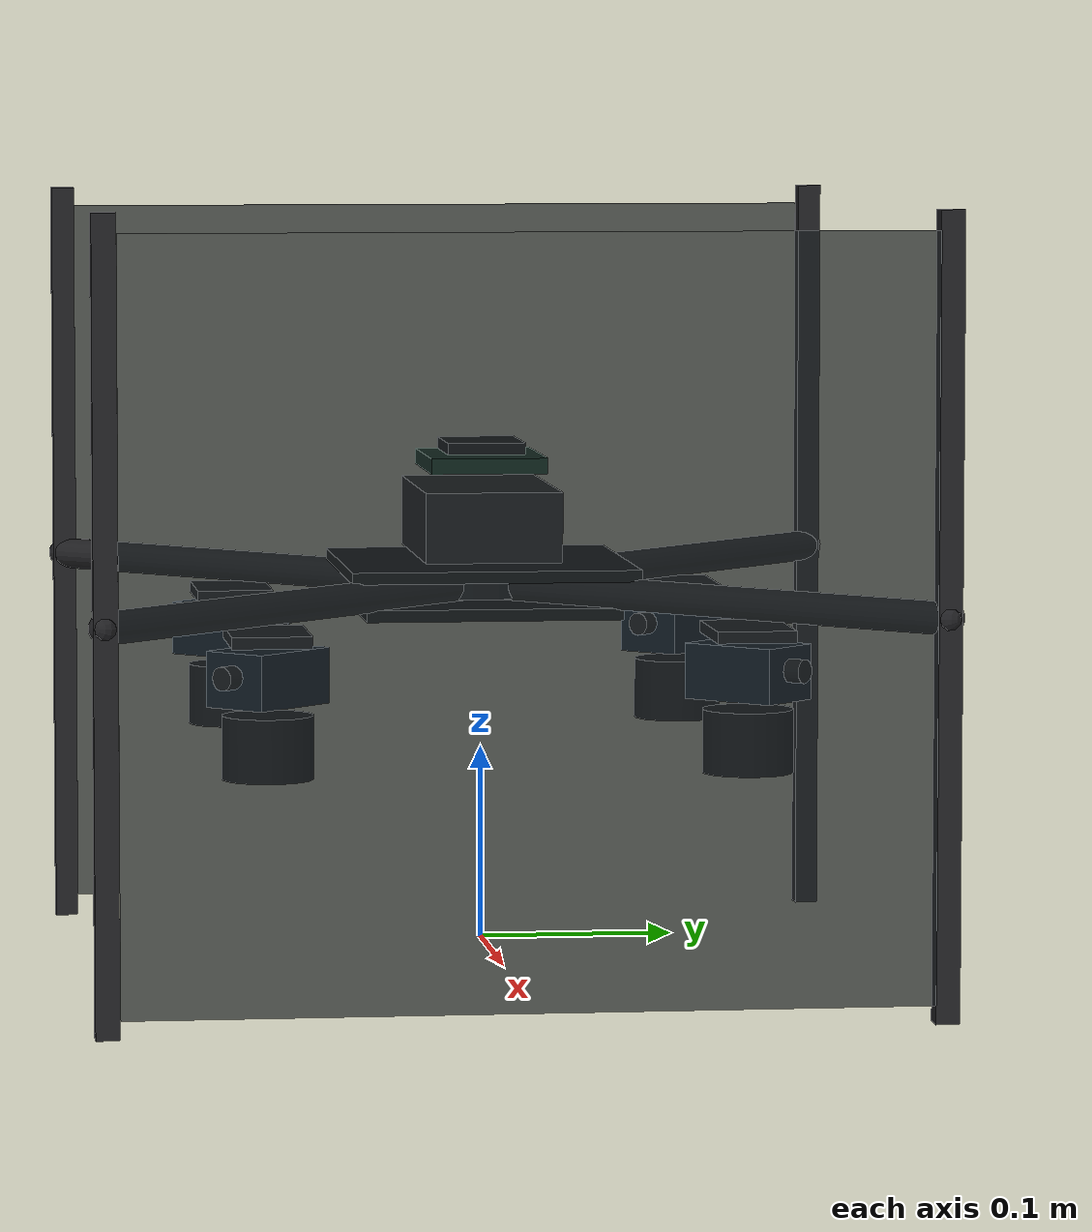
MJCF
<mujoco model="Follower">
  <compiler angle="radian" coordinate="local" inertiafromgeom="auto" />
  <option gravity="0 0 -9.81" timestep="0.002" />
  <default>
    <geom friction="1.0 1.0 1.0" density="0" />
    <joint damping="0.1" stiffness="0" />
  </default>

  <asset>
    <!-- Lightweight visual materials: all added decorative geoms are visual-only. -->
    <material name="mat_carbon" rgba="0.025 0.028 0.032 1" specular="0.45" shininess="0.75" />
    <material name="mat_dark_metal" rgba="0.08 0.085 0.095 1" specular="0.65" shininess="0.85" />
    <material name="mat_tube" rgba="0.12 0.12 0.13 1" specular="0.35" shininess="0.55" />
    <material name="mat_motor" rgba="0.04 0.045 0.055 1" specular="0.85" shininess="0.9" />
    <material name="mat_servo" rgba="0.02 0.10 0.18 1" specular="0.45" shininess="0.55" />
    <material name="mat_prop" rgba="1.0 0.55 0.08 0.82" specular="0.35" shininess="0.5" />
    <material name="mat_prop_disc" rgba="1.0 0.55 0.05 0.18" specular="0.2" shininess="0.25" />
    <material name="mat_contact" rgba="0.10 0.12 0.13 0.70" specular="0.25" shininess="0.45" />
    <material name="mat_contact_edge" rgba="0.02 0.02 0.025 1" specular="0.35" shininess="0.55" />
    <material name="mat_battery" rgba="0.12 0.12 0.12 1" specular="0.25" shininess="0.3" />
    <material name="mat_fc" rgba="0.02 0.25 0.12 1" specular="0.25" shininess="0.45" />
  </asset>
  <worldbody>

    <!-- Viewer helpers: lights and cameras do not affect dynamics. -->
    <light name="key_light" pos="1.0 -1.0 1.6" dir="-1 1 -2" diffuse="0.425 0.425 0.425" specular="0.125 0.125 0.125" />
    <light name="fill_light" pos="-0.8 0.8 1.2" dir="1 -1 -1.5" diffuse="0.125 0.125 0.15" specular="0.025 0.025 0.025" />
    <camera name="iso_view" pos="0.75 -0.75 0.55" xyaxes="0.707 0.707 0 -0.32 0.32 0.89" />
    <camera name="front_plate_view" pos="0.75 0.00 0.20" xyaxes="0 1 0 -0.20 0 0.98" />
    <body name="drone_base" pos="0.000000000 0.000000000 0.185000000">
      <freejoint name="root" />
      <inertial pos="0.000000000 0.000000000 0.000000000" mass="2.86" diaginertia="0.0730017 0.08790154 0.10388154" />
      <site name="drone_imu" pos="0.000000000 0.000000000 0.000000000" quat="1 0 0 0" rgba="1 1 1 1" />

      <!-- Decorative visual-only central stack. Collision/dynamics remain governed by the existing geoms/inertial. -->
      <geom name="vis_top_carbon_plate" type="box" pos="0 0 0.010000000"
            size="0.074 0.074 0.003" material="mat_carbon"
            contype="0" conaffinity="0" group="1" mass="0" />
      <geom name="vis_bottom_carbon_plate" type="box" pos="0 0 -0.010000000"
            size="0.066 0.066 0.003" material="mat_carbon"
            contype="0" conaffinity="0" group="1" mass="0" />
      <geom name="vis_battery_pack" type="box" pos="0 0 0.034000000"
            size="0.060 0.035 0.018" material="mat_battery"
            contype="0" conaffinity="0" group="1" mass="0" />
      <geom name="vis_fc_board" type="box" pos="0 0 0.064000000"
            size="0.040 0.030 0.004" material="mat_fc"
            contype="0" conaffinity="0" group="1" mass="0" />
      <geom name="vis_fc_cover" type="box" pos="0 0 0.072000000"
            size="0.026 0.020 0.003" rgba="0.02 0.02 0.025 1"
            contype="0" conaffinity="0" group="1" mass="0" />

      <!-- Symmetric contact plates: each 0.400 x 0.380 x 0.006 m, mass 0.180 kg.
           Plate masses and supplied CoM inertias are included in the base inertial above. -->
      <geom name="contact_plate_px" type="box"
            pos="0.212000000 0.000000000 0.000000000"
            size="0.003000000 0.200000000 0.190000000"
            material="mat_contact" contype="1" conaffinity="1" group="0" mass="0" />
      <geom name="contact_plate_nx" type="box"
            pos="-0.212000000 0.000000000 0.000000000"
            size="0.003000000 0.200000000 0.190000000"
            material="mat_contact" contype="1" conaffinity="1" group="0" mass="0" />
      <site name="cop_sensor_pp" type="sphere" pos="0.215 0.200 0.190" size="0.008" rgba="0.1 1 0.1 0" />
      <site name="cop_sensor_np" type="sphere" pos="0.215 -0.200 0.190" size="0.008" rgba="0.1 1 0.1 0" />
      <site name="cop_sensor_nn" type="sphere" pos="0.215 -0.200 -0.190" size="0.008" rgba="0.1 1 0.1 0" />
      <site name="cop_sensor_pn" type="sphere" pos="0.215 0.200 -0.190" size="0.008" rgba="0.1 1 0.1 0" />
      <!-- Top X-frame pipes -->
      <geom name="xpipe_top1" type="capsule" fromto="-0.206249572 -0.206249572 0.000000000 0.206249572 0.206249572 0.000000000" size="0.008139933" material="mat_tube" contype="1" conaffinity="1" group="0" mass="0" />
      <geom name="xpipe_top2" type="capsule" fromto="-0.206249572 0.206249572 0.000000000 0.206249572 -0.206249572 0.000000000" size="0.008139933" material="mat_tube" contype="1" conaffinity="1" group="0" mass="0" />
      <geom name="xpipe_center_hub_vis" type="cylinder" pos="0 0 0" size="0.026 0.006" material="mat_dark_metal" contype="0" conaffinity="0" group="1" mass="0" />
      <!-- Fixed visual servo mounting pads under the centered X-frame pipes. -->
      <geom name="servo1_mount_pad_vis" type="box" pos="0.120913386 0.120913386 -0.014000000"
            size="0.030 0.020 0.003" material="mat_dark_metal"
            contype="0" conaffinity="0" group="1" mass="0" />
      <geom name="servo2_mount_pad_vis" type="box" pos="-0.120913386 0.120913386 -0.014000000"
            size="0.030 0.020 0.003" material="mat_dark_metal"
            contype="0" conaffinity="0" group="1" mass="0" />
      <geom name="servo3_mount_pad_vis" type="box" pos="-0.120913386 -0.120913386 -0.014000000"
            size="0.030 0.020 0.003" material="mat_dark_metal"
            contype="0" conaffinity="0" group="1" mass="0" />
      <geom name="servo4_mount_pad_vis" type="box" pos="0.120913386 -0.120913386 -0.014000000"
            size="0.030 0.020 0.003" material="mat_dark_metal"
            contype="0" conaffinity="0" group="1" mass="0" />
      <!-- 400 mm square-pipe legs.
           Each box has half-length z=0.200 m, so the visible/collision leg spans
           local z=-0.200 m to +0.200 m. The centered X-frame pipes cross at z=0. -->
      <geom name="leg1_shaft" type="box"
            pos="-0.206249572 0.206249572 0.000000000"
            size="0.006000000 0.006000000 0.200000000"
            material="mat_tube" contype="1" conaffinity="1" group="0" mass="0" />
      <geom name="leg2_shaft" type="box"
            pos="0.206249572 0.206249572 0.000000000"
            size="0.006000000 0.006000000 0.200000000"
            material="mat_tube" contype="1" conaffinity="1" group="0" mass="0" />
      <geom name="leg3_shaft" type="box"
            pos="0.206249572 -0.206249572 0.000000000"
            size="0.006000000 0.006000000 0.200000000"
            material="mat_tube" contype="1" conaffinity="1" group="0" mass="0" />
      <geom name="leg4_shaft" type="box"
            pos="-0.206249572 -0.206249572 0.000000000"
            size="0.006000000 0.006000000 0.200000000"
            material="mat_tube" contype="1" conaffinity="1" group="0" mass="0" />

      <body name="servo1" pos="0.120913386 0.120913386 -0.032000000" quat="0.9238795 0 0 0.3826834">
        <inertial pos="0.000000000 0.000000000 0.000000000" mass="1e-9" diaginertia="1e-12 1e-12 1e-12" />
        <joint name="j_servo1" type="hinge" axis="1 0 0" pos="0.000000000 0.000000000 0.000000000" limited="true" range="-1.57079632679 1.57079632679" armature="0.005" damping="0.02" />

        <geom name="servo1_case_vis" type="box" pos="0.000 0.000 -0.002"
              size="0.026 0.018 0.014" material="mat_servo"
              contype="0" conaffinity="0" group="1" mass="0" />
        <geom name="servo1_hinge_vis" type="cylinder" pos="0.000 0.000 0.000" quat="0.7071068 0 0.7071068 0"
              size="0.006 0.035" material="mat_dark_metal"
              contype="0" conaffinity="0" group="1" mass="0" />
        <body name="prop1_body" pos="0.000000000 0.000000000 -0.055000000">
          <geom name="prop1_col" type="cylinder" pos="0.000000000 0.000000000 0.000000000" size="0.0762 0.001" mass="1e-9" material="mat_prop_disc" contype="0" conaffinity="0" group="1" />
                    <geom name="motor1_can_vis" type="cylinder" pos="0 0 0.018" size="0.023 0.016"
                material="mat_motor" contype="0" conaffinity="0" group="1" mass="0" />
          <geom name="motor1_hub_vis" type="cylinder" pos="0 0 0.006" size="0.010 0.004"
                material="mat_dark_metal" contype="0" conaffinity="0" group="1" mass="0" />
          <geom name="prop1_blade1_vis" type="box" pos="0.038000 0.000000 0.004"
                quat="1.0000000 0 0 0.0000000" size="0.041 0.0065 0.0008"
                material="mat_prop" contype="0" conaffinity="0" group="1" mass="0" />
          <geom name="prop1_blade2_vis" type="box" pos="-0.019000 0.032909 0.004"
                quat="0.5000000 0 0 0.8660254" size="0.041 0.0065 0.0008"
                material="mat_prop" contype="0" conaffinity="0" group="1" mass="0" />
          <geom name="prop1_blade3_vis" type="box" pos="-0.019000 -0.032909 0.004"
                quat="-0.5000000 0 0 0.8660254" size="0.041 0.0065 0.0008"
                material="mat_prop" contype="0" conaffinity="0" group="1" mass="0" />
          <site name="prop1_site" pos="0.000000000 0.000000000 0.000000000" size="0.005426622" type="sphere" rgba="1 1 1 0" />
        </body>
      </body>
      <body name="servo2" pos="-0.120913386 0.120913386 -0.032000000" quat="0.3826834 0 0 0.9238795">
        <!-- Tiny dummy inertia for MuJoCo compile stability; not intended as physical mass. -->
        <inertial pos="0.000000000 0.000000000 0.000000000" mass="1e-9" diaginertia="1e-12 1e-12 1e-12" />
        <joint name="j_servo2" type="hinge" axis="1 0 0" pos="0.000000000 0.000000000 0.000000000" limited="true" range="-1.57079632679 1.57079632679" armature="0.005" damping="0.02" />

        <geom name="servo2_case_vis" type="box" pos="0.000 0.000 -0.002"
              size="0.026 0.018 0.014" material="mat_servo"
              contype="0" conaffinity="0" group="1" mass="0" />
        <geom name="servo2_hinge_vis" type="cylinder" pos="0.000 0.000 0.000" quat="0.7071068 0 0.7071068 0"
              size="0.006 0.035" material="mat_dark_metal"
              contype="0" conaffinity="0" group="1" mass="0" />
        <body name="prop2_body" pos="0.000000000 0.000000000 -0.055000000">
          <geom name="prop2_col" type="cylinder" pos="0.000000000 0.000000000 0.000000000" size="0.0762 0.001" mass="1e-9" material="mat_prop_disc" contype="0" conaffinity="0" group="2" />
                    <geom name="motor2_can_vis" type="cylinder" pos="0 0 0.018" size="0.023 0.016"
                material="mat_motor" contype="0" conaffinity="0" group="1" mass="0" />
          <geom name="motor2_hub_vis" type="cylinder" pos="0 0 0.006" size="0.010 0.004"
                material="mat_dark_metal" contype="0" conaffinity="0" group="1" mass="0" />
          <geom name="prop2_blade1_vis" type="box" pos="0.038000 0.000000 0.004"
                quat="1.0000000 0 0 0.0000000" size="0.041 0.0065 0.0008"
                material="mat_prop" contype="0" conaffinity="0" group="1" mass="0" />
          <geom name="prop2_blade2_vis" type="box" pos="-0.019000 0.032909 0.004"
                quat="0.5000000 0 0 0.8660254" size="0.041 0.0065 0.0008"
                material="mat_prop" contype="0" conaffinity="0" group="1" mass="0" />
          <geom name="prop2_blade3_vis" type="box" pos="-0.019000 -0.032909 0.004"
                quat="-0.5000000 0 0 0.8660254" size="0.041 0.0065 0.0008"
                material="mat_prop" contype="0" conaffinity="0" group="1" mass="0" />
          <site name="prop2_site" pos="0.000000000 0.000000000 0.000000000" size="0.005426622" type="sphere" rgba="1 1 1 0" />
        </body>
      </body>
      <body name="servo3" pos="-0.120913386 -0.120913386 -0.032000000" quat="0.3826834 0 0 -0.9238795">
        <inertial pos="0.000000000 0.000000000 0.000000000" mass="1e-9" diaginertia="1e-12 1e-12 1e-12" />
        <joint name="j_servo3" type="hinge" axis="1 0 0" pos="0.000000000 0.000000000 0.000000000" limited="true" range="-1.57079632679 1.57079632679" armature="0.005" damping="0.02" />

        <geom name="servo3_case_vis" type="box" pos="0.000 0.000 -0.002"
              size="0.026 0.018 0.014" material="mat_servo"
              contype="0" conaffinity="0" group="1" mass="0" />
        <geom name="servo3_hinge_vis" type="cylinder" pos="0.000 0.000 0.000" quat="0.7071068 0 0.7071068 0"
              size="0.006 0.035" material="mat_dark_metal"
              contype="0" conaffinity="0" group="1" mass="0" />
        <body name="prop3_body" pos="0.000000000 0.000000000 -0.055000000">
          <geom name="prop3_col" type="cylinder" pos="0.000000000 0.000000000 0.000000000" size="0.0762 0.001" mass="1e-9" material="mat_prop_disc" contype="0" conaffinity="0" group="3" />
                    <geom name="motor3_can_vis" type="cylinder" pos="0 0 0.018" size="0.023 0.016"
                material="mat_motor" contype="0" conaffinity="0" group="1" mass="0" />
          <geom name="motor3_hub_vis" type="cylinder" pos="0 0 0.006" size="0.010 0.004"
                material="mat_dark_metal" contype="0" conaffinity="0" group="1" mass="0" />
          <geom name="prop3_blade1_vis" type="box" pos="0.038000 0.000000 0.004"
                quat="1.0000000 0 0 0.0000000" size="0.041 0.0065 0.0008"
                material="mat_prop" contype="0" conaffinity="0" group="1" mass="0" />
          <geom name="prop3_blade2_vis" type="box" pos="-0.019000 0.032909 0.004"
                quat="0.5000000 0 0 0.8660254" size="0.041 0.0065 0.0008"
                material="mat_prop" contype="0" conaffinity="0" group="1" mass="0" />
          <geom name="prop3_blade3_vis" type="box" pos="-0.019000 -0.032909 0.004"
                quat="-0.5000000 0 0 0.8660254" size="0.041 0.0065 0.0008"
                material="mat_prop" contype="0" conaffinity="0" group="1" mass="0" />
          <site name="prop3_site" pos="0.000000000 0.000000000 0.000000000" size="0.005426622" type="sphere" rgba="1 1 1 0" />
        </body>
      </body>
      <body name="servo4" pos="0.120913386 -0.120913386 -0.032000000" quat="0.9238795 0 0 -0.3826834">
        <inertial pos="0.000000000 0.000000000 0.000000000" mass="1e-9" diaginertia="1e-12 1e-12 1e-12" />
        <joint name="j_servo4" type="hinge" axis="1 0 0" pos="0.000000000 0.000000000 0.000000000" limited="true" range="-1.57079632679 1.57079632679" armature="0.005" damping="0.02" />

        <geom name="servo4_case_vis" type="box" pos="0.000 0.000 -0.002"
              size="0.026 0.018 0.014" material="mat_servo"
              contype="0" conaffinity="0" group="1" mass="0" />
        <geom name="servo4_hinge_vis" type="cylinder" pos="0.000 0.000 0.000" quat="0.7071068 0 0.7071068 0"
              size="0.006 0.035" material="mat_dark_metal"
              contype="0" conaffinity="0" group="1" mass="0" />
        <body name="prop4_body" pos="0.000000000 0.000000000 -0.055000000">
          <geom name="prop4_col" type="cylinder" pos="0.000000000 0.000000000 0.000000000" size="0.0762 0.001" mass="1e-9" material="mat_prop_disc" contype="0" conaffinity="0" group="4" />
                    <geom name="motor4_can_vis" type="cylinder" pos="0 0 0.018" size="0.023 0.016"
                material="mat_motor" contype="0" conaffinity="0" group="1" mass="0" />
          <geom name="motor4_hub_vis" type="cylinder" pos="0 0 0.006" size="0.010 0.004"
                material="mat_dark_metal" contype="0" conaffinity="0" group="1" mass="0" />
          <geom name="prop4_blade1_vis" type="box" pos="0.038000 0.000000 0.004"
                quat="1.0000000 0 0 0.0000000" size="0.041 0.0065 0.0008"
                material="mat_prop" contype="0" conaffinity="0" group="1" mass="0" />
          <geom name="prop4_blade2_vis" type="box" pos="-0.019000 0.032909 0.004"
                quat="0.5000000 0 0 0.8660254" size="0.041 0.0065 0.0008"
                material="mat_prop" contype="0" conaffinity="0" group="1" mass="0" />
          <geom name="prop4_blade3_vis" type="box" pos="-0.019000 -0.032909 0.004"
                quat="-0.5000000 0 0 0.8660254" size="0.041 0.0065 0.0008"
                material="mat_prop" contype="0" conaffinity="0" group="1" mass="0" />
          <site name="prop4_site" pos="0.000000000 0.000000000 0.000000000" size="0.005426622" type="sphere" rgba="1 1 1 0" />
        </body>
      </body>
    </body>
  </worldbody>
  <actuator>
    <general name="BLDC1" site="prop1_site" gear="0 0 1 0 0  0.02" ctrlrange="0 15" />
    <general name="BLDC2" site="prop2_site" gear="0 0 1 0 0 -0.02" ctrlrange="0 15" />
    <general name="BLDC3" site="prop3_site" gear="0 0 1 0 0  0.02" ctrlrange="0 15" />
    <general name="BLDC4" site="prop4_site" gear="0 0 1 0 0 -0.02" ctrlrange="0 15" />
    <position name="servo1_pos" joint="j_servo1" kp="10" kv="0.2" ctrlrange="-1.57079632679 1.57079632679" />
    <position name="servo2_pos" joint="j_servo2" kp="10" kv="0.2" ctrlrange="-1.57079632679 1.57079632679" />
    <position name="servo3_pos" joint="j_servo3" kp="10" kv="0.2" ctrlrange="-1.57079632679 1.57079632679" />
    <position name="servo4_pos" joint="j_servo4" kp="10" kv="0.2" ctrlrange="-1.57079632679 1.57079632679" />
  </actuator>
  <sensor>
    <!-- Contact-plate corner force sensors: (+y,+z), (-y,+z), (-y,-z), (+y,-z). -->
    <touch name="cop_force_pp" site="cop_sensor_pp" />
    <touch name="cop_force_np" site="cop_sensor_np" />
    <touch name="cop_force_nn" site="cop_sensor_nn" />
    <touch name="cop_force_pn" site="cop_sensor_pn" />
    <!-- IMU site: drone_imu -->
    <framequat name="body_quat" objtype="site" objname="drone_imu" />
    <gyro name="body_gyro" site="drone_imu" />
    <!-- Base body: drone_base -->
    <framepos name="base_pos" objtype="body" objname="drone_base" />
    <framelinvel name="base_linvel" objtype="body" objname="drone_base" />
    <!-- Servo sensors -->
    <jointpos name="servo1_angle" joint="j_servo1" />
    <jointpos name="servo2_angle" joint="j_servo2" />
    <jointpos name="servo3_angle" joint="j_servo3" />
    <jointpos name="servo4_angle" joint="j_servo4" />
    <jointvel name="servo1_vel" joint="j_servo1" />
    <jointvel name="servo2_vel" joint="j_servo2" />
    <jointvel name="servo3_vel" joint="j_servo3" />
    <jointvel name="servo4_vel" joint="j_servo4" />
    <!-- Propeller site states -->
    <framepos name="prop1_pos" objtype="site" objname="prop1_site" />
    <framepos name="prop2_pos" objtype="site" objname="prop2_site" />
    <framepos name="prop3_pos" objtype="site" objname="prop3_site" />
    <framepos name="prop4_pos" objtype="site" objname="prop4_site" />
    <framequat name="prop1_quat" objtype="site" objname="prop1_site" />
    <framequat name="prop2_quat" objtype="site" objname="prop2_site" />
    <framequat name="prop3_quat" objtype="site" objname="prop3_site" />
    <framequat name="prop4_quat" objtype="site" objname="prop4_site" />
    <framelinvel name="prop1_linvel" objtype="site" objname="prop1_site" />
    <framelinvel name="prop2_linvel" objtype="site" objname="prop2_site" />
    <framelinvel name="prop3_linvel" objtype="site" objname="prop3_site" />
    <framelinvel name="prop4_linvel" objtype="site" objname="prop4_site" />
    <frameangvel name="prop1_angvel" objtype="site" objname="prop1_site" />
    <frameangvel name="prop2_angvel" objtype="site" objname="prop2_site" />
    <frameangvel name="prop3_angvel" objtype="site" objname="prop3_site" />
    <frameangvel name="prop4_angvel" objtype="site" objname="prop4_site" />
  </sensor>
</mujoco>
